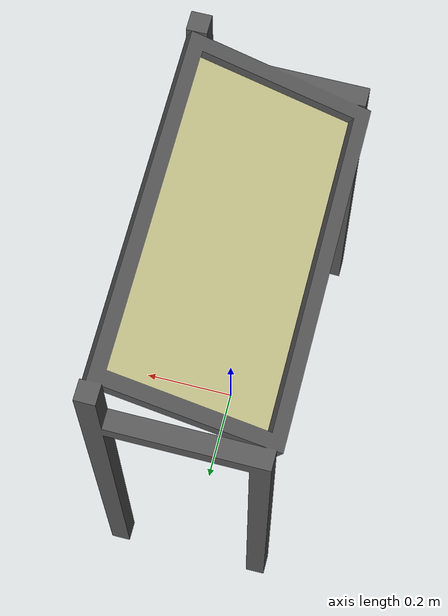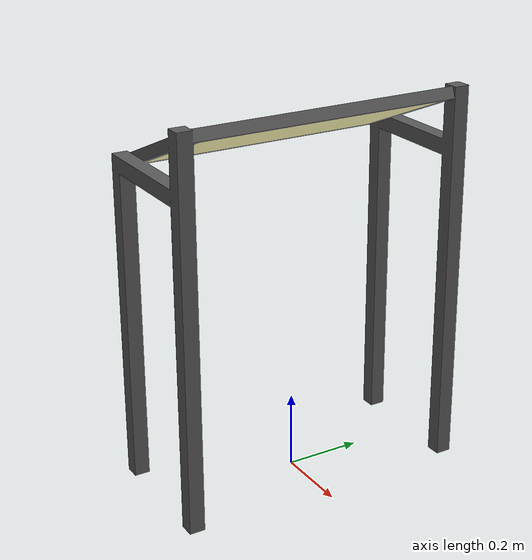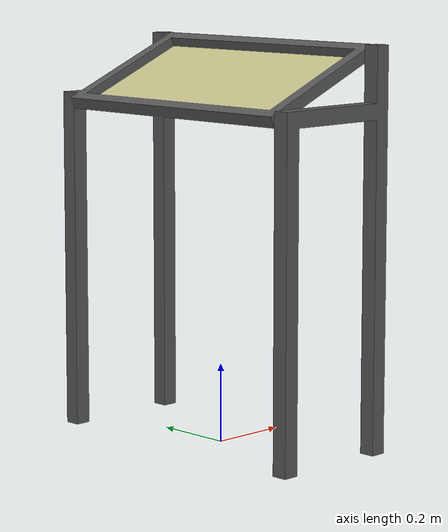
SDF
<?xml version="1.0"?>
<sdf version="1.4">

  <model name="Op Station">

    <static>true</static>

    <link name="link">

      <pose>0 0 0 0 0 0</pose>

      <collision name="station_collision">
        <geometry>
          <mesh>
            <uri>model://op_station/meshes/Station_2Boxes.dae</uri>
          </mesh>
        </geometry>
      </collision>

      <visual name="station_visual">
        <geometry>
          <mesh>
            <uri>model://op_station/meshes/Station_2Boxes.dae</uri>
          </mesh>
        </geometry>

        <material>
          <script>
            <uri>model://op_station/materials/scripts</uri>
            <uri>model://op_station/materials/textures</uri>
          </script>
        </material>
      </visual>

    </link>

  </model>
</sdf>
